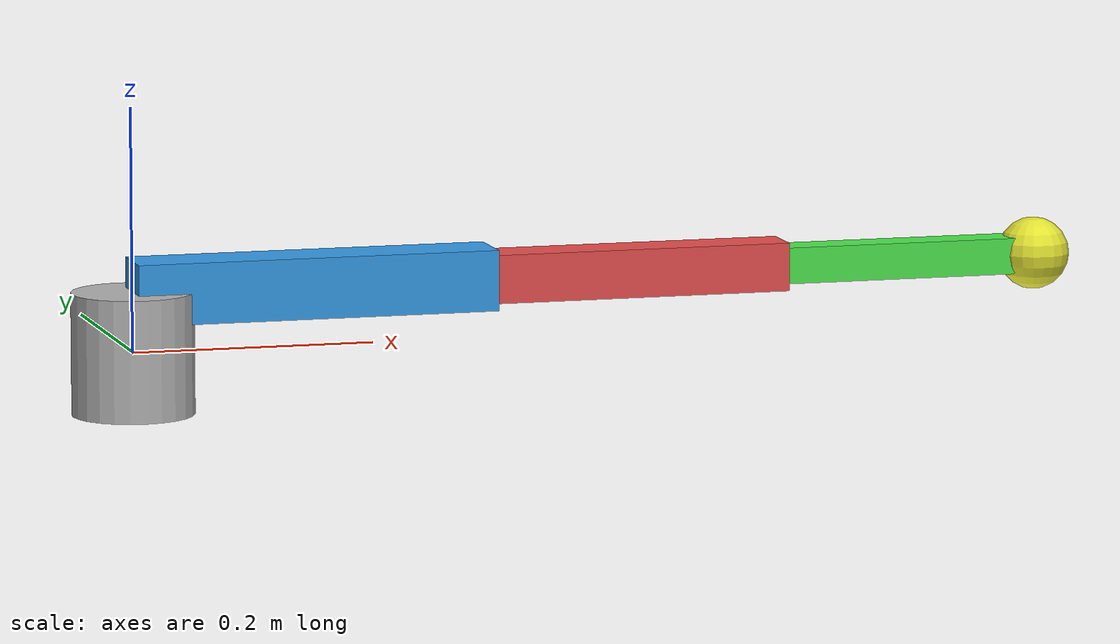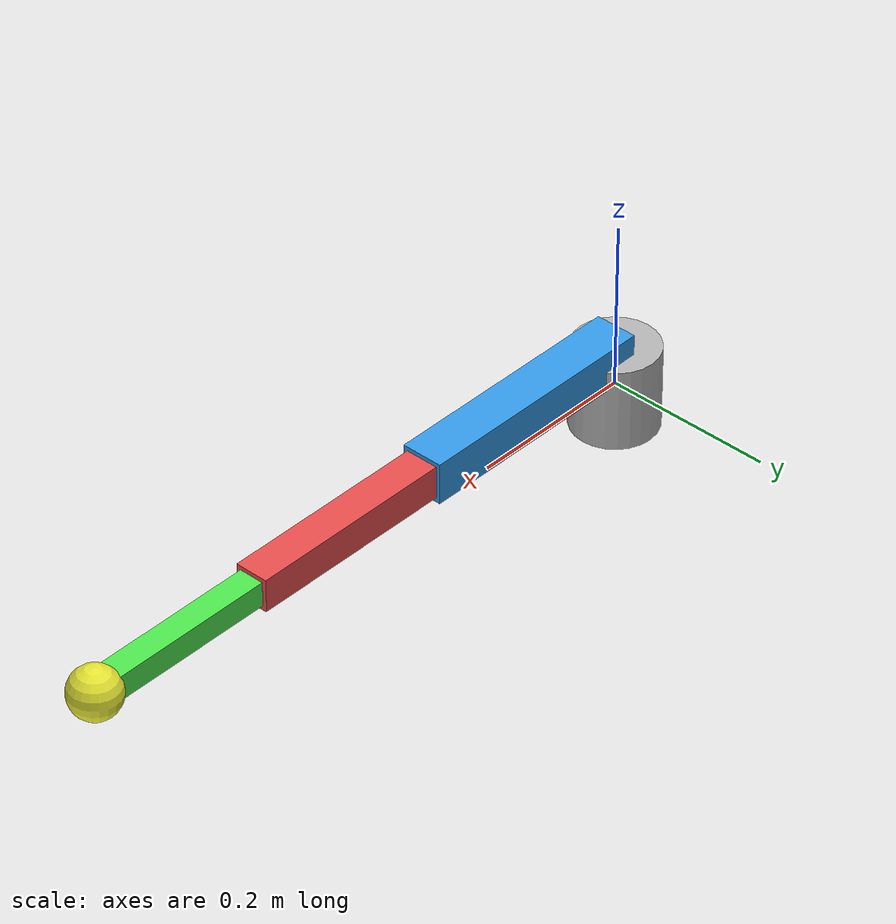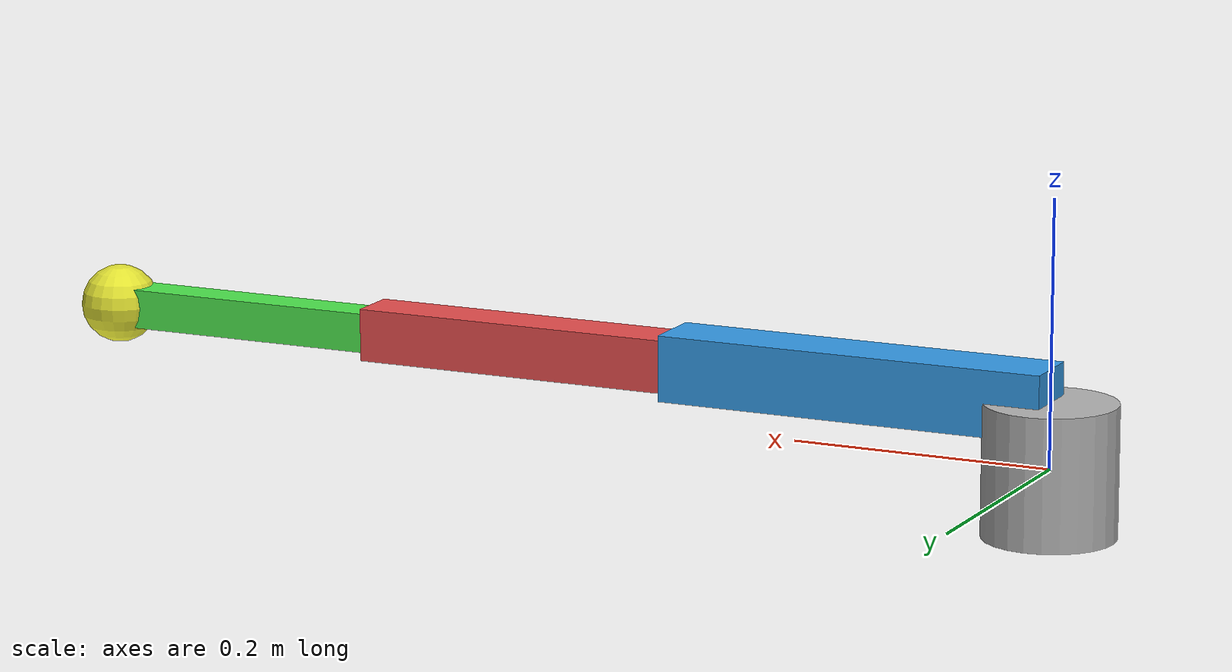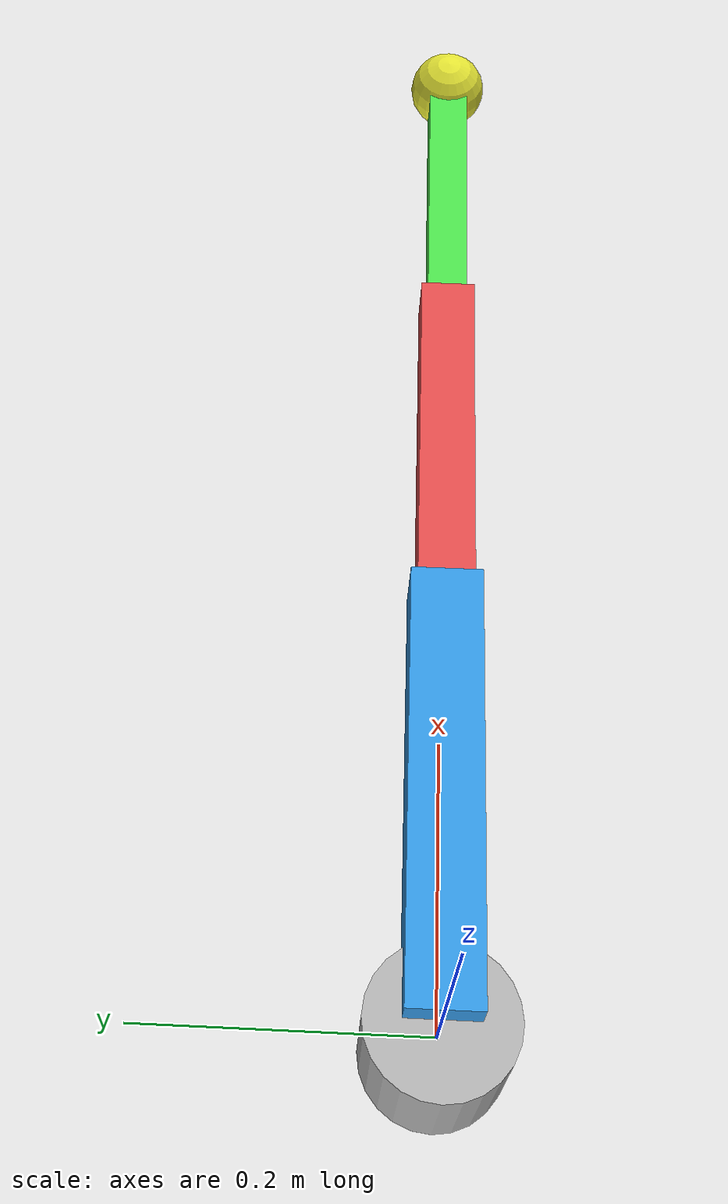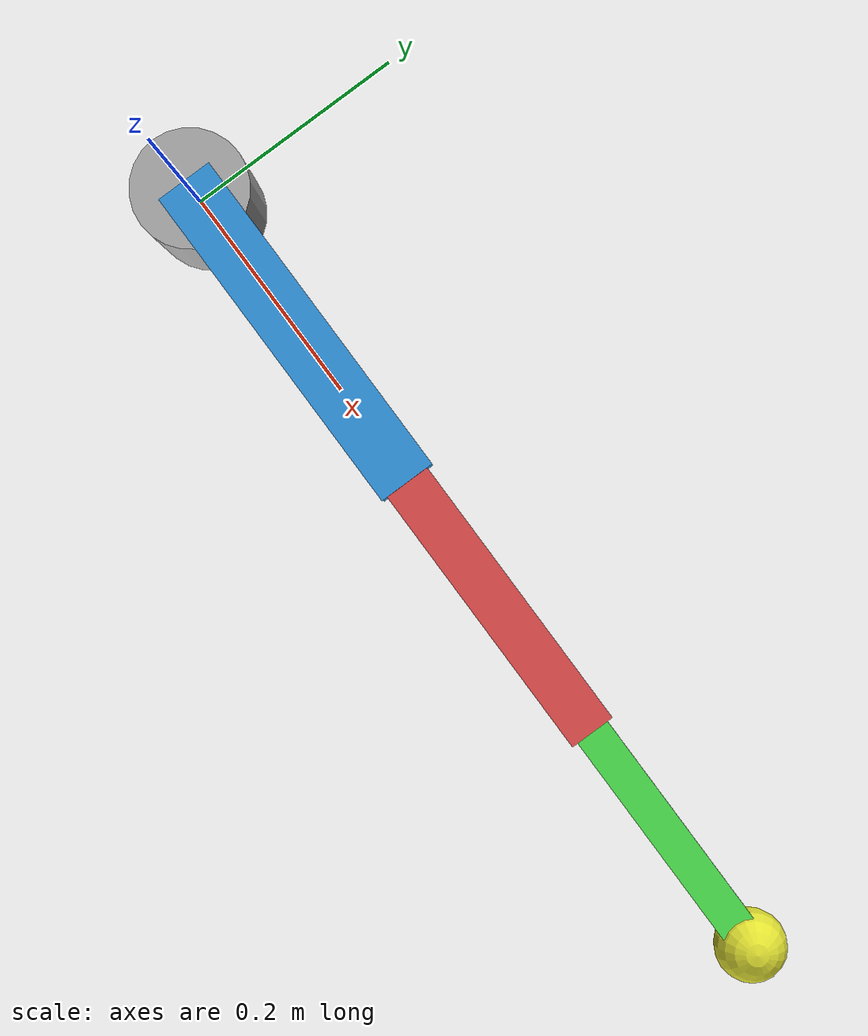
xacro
<?xml version="1.0"?>
<robot xmlns:xacro="http://ros.org/wiki/xacro" name="my_3dof_arm">

  <!-- Base -->
  <link name="base_link">
    <visual>
      <geometry><cylinder length="0.1" radius="0.05"/></geometry>
      <material name="grey"><color rgba="0.7 0.7 0.7 1"/></material>
    </visual>
  </link>

  <!-- Shoulder joint -->
  <joint name="joint1" type="revolute">
    <parent link="base_link"/>
    <child link="link1"/>
    <origin xyz="0 0 0.05" rpy="0 0 0"/>
    <axis xyz="0 0 1"/>
    <limit lower="-1.57" upper="1.57" effort="10" velocity="1"/>
  </joint>
  <link name="link1">
    <visual>
      <geometry><box size="0.3 0.05 0.05"/></geometry>
      <origin xyz="0.15 0 0" rpy="0 0 0"/>
      <material name="blue"><color rgba="0.2 0.6 0.9 1"/></material>
    </visual>
  </link>

  <!-- Elbow joint -->
  <joint name="joint2" type="revolute">
    <parent link="link1"/>
    <child link="link2"/>
    <origin xyz="0.3 0 0" rpy="0 0 0"/>
    <axis xyz="0 0 1"/>
    <limit lower="-1.57" upper="1.57" effort="10" velocity="1"/>
  </joint>
  <link name="link2">
    <visual>
      <geometry><box size="0.25 0.04 0.04"/></geometry>
      <origin xyz="0.125 0 0" rpy="0 0 0"/>
      <material name="red"><color rgba="0.9 0.3 0.3 1"/></material>
    </visual>
  </link>

  <!-- Wrist joint -->
  <joint name="joint3" type="revolute">
    <parent link="link2"/>
    <child link="link3"/>
    <origin xyz="0.25 0 0" rpy="0 0 0"/>
    <axis xyz="0 0 1"/>
    <limit lower="-1.57" upper="1.57" effort="10" velocity="1"/>
  </joint>
  <link name="link3">
    <visual>
      <geometry><box size="0.2 0.03 0.03"/></geometry>
      <origin xyz="0.1 0 0" rpy="0 0 0"/>
      <material name="green"><color rgba="0.3 0.9 0.3 1"/></material>
    </visual>
  </link>

  <!-- End effector -->
  <link name="ee_link">
    <visual>
      <geometry><sphere radius="0.03"/></geometry>
      <origin xyz="0.02 0 0" rpy="0 0 0"/>
      <material name="yellow"><color rgba="0.9 0.9 0.2 1"/></material>
    </visual>
  </link>
  <joint name="ee_joint" type="fixed">
    <parent link="link3"/>
    <child link="ee_link"/>
    <origin xyz="0.2 0 0" rpy="0 0 0"/>
  </joint>

</robot>
